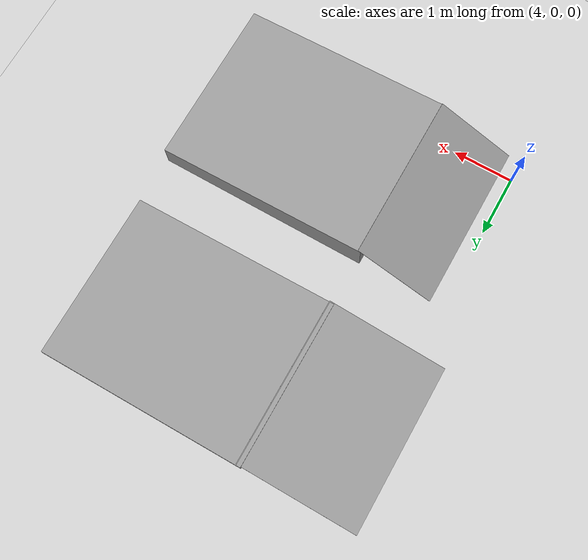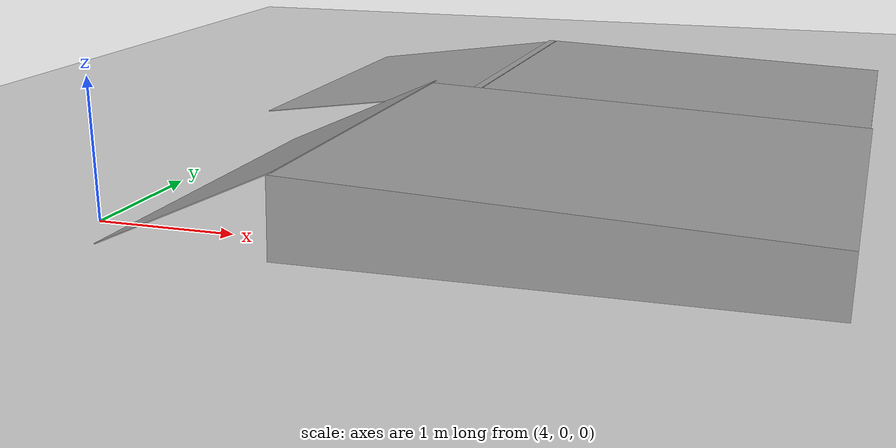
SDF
<sdf version="1.6">
 <world name="default">
  <light name="sun" type="directional">
   <pose>0 0 10 0 -0 0</pose>
   <diffuse>0.8 0.8 0.8 1</diffuse>
   <specular>0.1 0.1 0.1 1</specular>
   <attenuation>
    <range>1000</range>
    <constant>0.9</constant>
    <linear>0.01</linear>
    <quadratic>0.001</quadratic>
   </attenuation>
   <direction>-0.5 0.5 -1</direction>
  </light>
  <model name="ground_plane">
   <static>1</static>
   <link name="link">
    <collision name="collision">
     <geometry><plane><normal>0 0 1</normal><size>100 100</size></plane></geometry>
     <surface><friction><ode><mu>100</mu><mu2>50</mu2></ode></friction></surface>
    </collision>
    <visual name="visual">
     <cast_shadows>0</cast_shadows>
     <geometry><plane><normal>0 0 1</normal><size>100 100</size></plane></geometry>
     <material>
      <script><uri>file://media/materials/scripts/gazebo.material</uri><name>Gazebo/Grey</name></script>
     </material>
    </visual>
   </link>
  </model>
  <gravity>0 0 -9.8</gravity>
  <magnetic_field>6e-06 2.3e-05 -4.2e-05</magnetic_field>
  <atmosphere type="adiabatic"/>
  <physics name="default_physics" default="0" type="ode">
   <max_step_size>0.001</max_step_size>
   <real_time_factor>1</real_time_factor>
   <real_time_update_rate>1000</real_time_update_rate>
  </physics>
  <scene><ambient>0.4 0.4 0.4 1</ambient><background>0.7 0.7 0.7 1</background><shadows>1</shadows></scene>
  <spherical_coordinates>
   <surface_model>EARTH_WGS84</surface_model>
   <latitude_deg>0</latitude_deg>
   <longitude_deg>0</longitude_deg>
   <elevation>0</elevation>
   <heading_deg>0</heading_deg>
  </spherical_coordinates>
  <model name="Untitled">
   <link name="link_0">
    <pose>1.29807 1.8141 0.046369 0 -0 0</pose>
    <inertial>
     <mass>1.34586</mass>
     <inertia><ixx>0.872557</ixx><ixy>0</ixy><ixz>0</ixz><iyy>1.37006</iyy><iyz>0</iyz><izz>2.23832</izz></inertia>
    </inertial>
    <visual name="visual">
     <geometry><box><size>3.49236 2.78582 0.138315</size></box></geometry>
     <material>
      <lighting>1</lighting>
      <script><uri>file://media/materials/scripts/gazebo.material</uri><name>Gazebo/Grey</name></script>
      <ambient>0.3 0.3 0.3 1</ambient>
      <diffuse>0.7 0.7 0.7 1</diffuse>
      <specular>0.01 0.01 0.01 1</specular>
      <emissive>0 0 0 1</emissive>
      <shader type="vertex"><normal_map>__default__</normal_map></shader>
     </material>
    </visual>
    <collision name="collision">
     <geometry><box><size>3.49236 2.78582 0.138315</size></box></geometry>
     <surface>
      <friction>
       <ode><mu>1</mu><mu2>1</mu2><fdir1>0 0 0</fdir1><slip1>0</slip1><slip2>0</slip2></ode>
       <torsional>
        <coefficient>1</coefficient>
        <patch_radius>0</patch_radius>
        <surface_radius>0</surface_radius>
        <use_patch_radius>1</use_patch_radius>
        <ode><slip>0</slip></ode>
       </torsional>
      </friction>
      <bounce><restitution_coefficient>0</restitution_coefficient><threshold>1e+06</threshold></bounce>
      <contact>
       <collide_without_contact>0</collide_without_contact>
       <collide_without_contact_bitmask>1</collide_without_contact_bitmask>
       <collide_bitmask>1</collide_bitmask>
       <ode>
        <soft_cfm>0</soft_cfm>
        <soft_erp>0.2</soft_erp>
        <kp>1e+13</kp>
        <kd>1</kd>
        <max_vel>0.01</max_vel>
        <min_depth>0</min_depth>
       </ode>
       <bullet>
        <split_impulse>1</split_impulse>
        <split_impulse_penetration_threshold>-0.01</split_impulse_penetration_threshold>
        <soft_cfm>0</soft_cfm>
        <soft_erp>0.2</soft_erp>
        <kp>1e+13</kp>
        <kd>1</kd>
       </bullet>
      </contact>
     </surface>
    </collision>
   </link>
   <link name="link_0_clone">
    <pose>-1.35767 1.79776 -0.066868 0 -0.18024 0</pose>
    <inertial>
     <mass>0.039426</mass>
     <inertia>
      <ixx>0.0254981</ixx>
      <ixy>0</ixy>
      <ixz>0</ixz>
      <iyy>0.0134209</iyy>
      <iyz>0</iyz>
      <izz>0.0389187</izz>
     </inertia>
    </inertial>
    <visual name="visual">
     <geometry><box><size>2.02109 2.78582 0.007001</size></box></geometry>
     <material>
      <lighting>1</lighting>
      <script><uri>file://media/materials/scripts/gazebo.material</uri><name>Gazebo/Grey</name></script>
      <ambient>0.3 0.3 0.3 1</ambient>
      <diffuse>0.7 0.7 0.7 1</diffuse>
      <specular>0.01 0.01 0.01 1</specular>
      <emissive>0 0 0 1</emissive>
      <shader type="vertex"><normal_map>__default__</normal_map></shader>
     </material>
    </visual>
    <collision name="collision">
     <geometry><box><size>2.02109 2.78582 0.007001</size></box></geometry>
     <surface>
      <friction>
       <ode><mu>1</mu><mu2>1</mu2><fdir1>0 0 0</fdir1><slip1>0</slip1><slip2>0</slip2></ode>
       <torsional>
        <coefficient>1</coefficient>
        <patch_radius>0</patch_radius>
        <surface_radius>0</surface_radius>
        <use_patch_radius>1</use_patch_radius>
        <ode><slip>0</slip></ode>
       </torsional>
      </friction>
      <bounce><restitution_coefficient>0</restitution_coefficient><threshold>1e+06</threshold></bounce>
      <contact>
       <collide_without_contact>0</collide_without_contact>
       <collide_without_contact_bitmask>1</collide_without_contact_bitmask>
       <collide_bitmask>1</collide_bitmask>
       <ode>
        <soft_cfm>0</soft_cfm>
        <soft_erp>0.2</soft_erp>
        <kp>1e+13</kp>
        <kd>1</kd>
        <max_vel>0.01</max_vel>
        <min_depth>0</min_depth>
       </ode>
       <bullet>
        <split_impulse>1</split_impulse>
        <split_impulse_penetration_threshold>-0.01</split_impulse_penetration_threshold>
        <soft_cfm>0</soft_cfm>
        <soft_erp>0.2</soft_erp>
        <kp>1e+13</kp>
        <kd>1</kd>
       </bullet>
      </contact>
     </surface>
    </collision>
   </link>
   <link name="link_0_clone_0">
    <pose>1.31104 -1.80593 0.046369 0 -0 0</pose>
    <inertial>
     <mass>6.52141</mass>
     <inertia><ixx>4.46203</ixx><ixy>0</ixy><ixz>0</ixz><iyy>6.8727</iyy><iyz>0</iyz><izz>10.8459</izz></inertia>
    </inertial>
    <visual name="visual">
     <geometry><box><size>3.49236 2.78582 0.670208</size></box></geometry>
     <material>
      <lighting>1</lighting>
      <script><uri>file://media/materials/scripts/gazebo.material</uri><name>Gazebo/Grey</name></script>
      <ambient>0.3 0.3 0.3 1</ambient>
      <diffuse>0.7 0.7 0.7 1</diffuse>
      <specular>0.01 0.01 0.01 1</specular>
      <emissive>0 0 0 1</emissive>
      <shader type="vertex"><normal_map>__default__</normal_map></shader>
     </material>
    </visual>
    <collision name="collision">
     <geometry><box><size>3.49236 2.78582 0.670208</size></box></geometry>
     <surface>
      <friction>
       <ode><mu>1</mu><mu2>1</mu2><fdir1>0 0 0</fdir1><slip1>0</slip1><slip2>0</slip2></ode>
       <torsional>
        <coefficient>1</coefficient>
        <patch_radius>0</patch_radius>
        <surface_radius>0</surface_radius>
        <use_patch_radius>1</use_patch_radius>
        <ode><slip>0</slip></ode>
       </torsional>
      </friction>
      <bounce><restitution_coefficient>0</restitution_coefficient><threshold>1e+06</threshold></bounce>
      <contact>
       <collide_without_contact>0</collide_without_contact>
       <collide_without_contact_bitmask>1</collide_without_contact_bitmask>
       <collide_bitmask>1</collide_bitmask>
       <ode>
        <soft_cfm>0</soft_cfm>
        <soft_erp>0.2</soft_erp>
        <kp>1e+13</kp>
        <kd>1</kd>
        <max_vel>0.01</max_vel>
        <min_depth>0</min_depth>
       </ode>
       <bullet>
        <split_impulse>1</split_impulse>
        <split_impulse_penetration_threshold>-0.01</split_impulse_penetration_threshold>
        <soft_cfm>0</soft_cfm>
        <soft_erp>0.2</soft_erp>
        <kp>1e+13</kp>
        <kd>1</kd>
       </bullet>
      </contact>
     </surface>
    </collision>
   </link>
   <link name="link_0_clone_clone">
    <pose>-1.25144 -1.80593 -0.025869 0 -0.462705 0</pose>
    <inertial>
     <mass>0.0373509</mass>
     <inertia>
      <ixx>0.0241561</ixx>
      <ixy>0</ixy>
      <ixz>0</ixz>
      <iyy>0.0114114</iyy>
      <iyz>0</iyz>
      <izz>0.0355671</izz>
     </inertia>
    </inertial>
    <visual name="visual">
     <geometry><box><size>1.91471 2.78582 0.007001</size></box></geometry>
     <material>
      <lighting>1</lighting>
      <script><uri>file://media/materials/scripts/gazebo.material</uri><name>Gazebo/Grey</name></script>
      <ambient>0.3 0.3 0.3 1</ambient>
      <diffuse>0.7 0.7 0.7 1</diffuse>
      <specular>0.01 0.01 0.01 1</specular>
      <emissive>0 0 0 1</emissive>
      <shader type="vertex"><normal_map>__default__</normal_map></shader>
     </material>
    </visual>
    <collision name="collision">
     <geometry><box><size>1.91471 2.78582 0.007001</size></box></geometry>
     <surface>
      <friction>
       <ode><mu>1</mu><mu2>1</mu2><fdir1>0 0 0</fdir1><slip1>0</slip1><slip2>0</slip2></ode>
       <torsional>
        <coefficient>1</coefficient>
        <patch_radius>0</patch_radius>
        <surface_radius>0</surface_radius>
        <use_patch_radius>1</use_patch_radius>
        <ode><slip>0</slip></ode>
       </torsional>
      </friction>
      <bounce><restitution_coefficient>0</restitution_coefficient><threshold>1e+06</threshold></bounce>
      <contact>
       <collide_without_contact>0</collide_without_contact>
       <collide_without_contact_bitmask>1</collide_without_contact_bitmask>
       <collide_bitmask>1</collide_bitmask>
       <ode>
        <soft_cfm>0</soft_cfm>
        <soft_erp>0.2</soft_erp>
        <kp>1e+13</kp>
        <kd>1</kd>
        <max_vel>0.01</max_vel>
        <min_depth>0</min_depth>
       </ode>
       <bullet>
        <split_impulse>1</split_impulse>
        <split_impulse_penetration_threshold>-0.01</split_impulse_penetration_threshold>
        <soft_cfm>0</soft_cfm>
        <soft_erp>0.2</soft_erp>
        <kp>1e+13</kp>
        <kd>1</kd>
       </bullet>
      </contact>
     </surface>
    </collision>
   </link>
   <joint name="link_0_JOINT_0" type="fixed">
    <parent>link_0</parent>
    <child>link_0_clone</child>
    <physics>
     <ode><limit><cfm>0</cfm><erp>0.2</erp></limit><suspension><cfm>0</cfm><erp>0.2</erp></suspension></ode>
    </physics>
   </joint>
   <joint name="link_0_clone_0_JOINT_2" type="fixed">
    <parent>link_0_clone_0</parent>
    <child>link_0_clone_clone</child>
    <physics>
     <ode><limit><cfm>0</cfm><erp>0.2</erp></limit><suspension><cfm>0</cfm><erp>0.2</erp></suspension></ode>
    </physics>
   </joint>
   <static>0</static>
   <pose>5.89728 2.81316 0.151568 2e-06 0.042325 -0.001359</pose>
  </model>
 </world>
</sdf>
